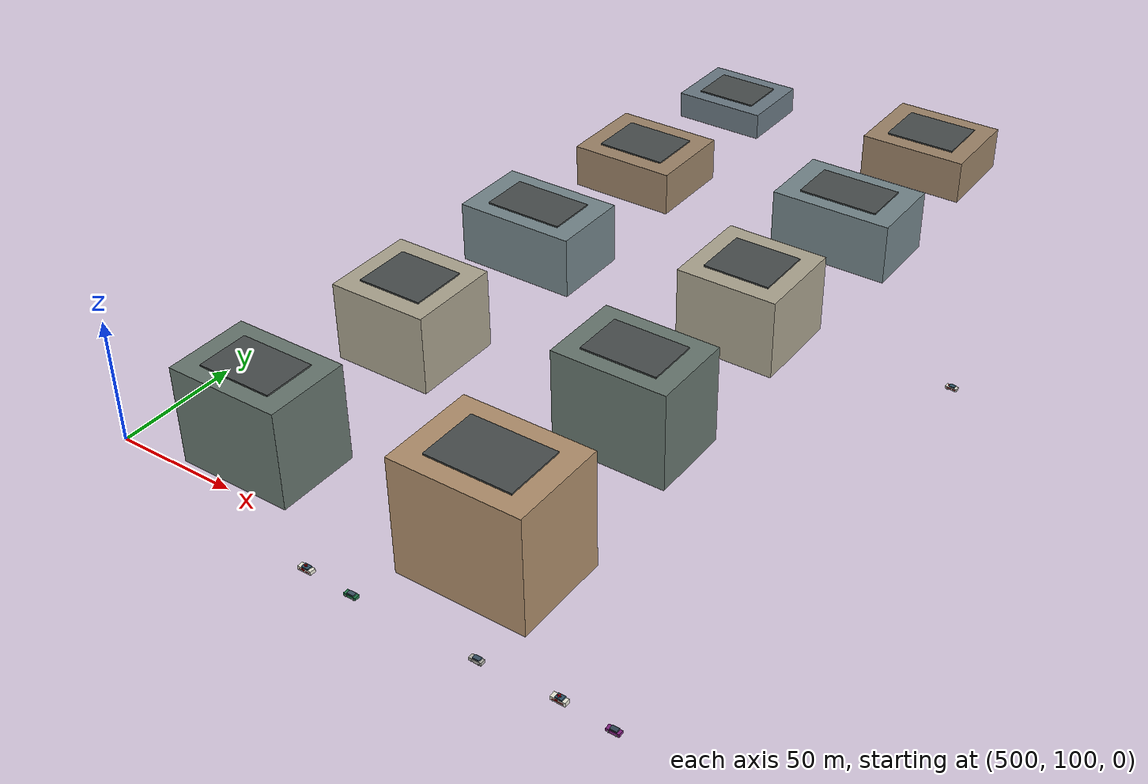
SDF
<sdf version="1.9">
 <world name="smart_city">
  <model name="chennai_block_064">
   <static>true</static>
   <pose>550 120 0 0 0 0</pose>
   <link name="building">
    <collision name="structure">
     <pose>0 0 20.0 0 0 0</pose>
     <geometry><box><size>47 34 40</size></box></geometry>
    </collision>
    <visual name="facade">
     <pose>0 0 20.0 0 0 0</pose>
     <geometry><box><size>47 34 40</size></box></geometry>
     <material><ambient>0.41 0.47 0.44 1</ambient><diffuse>0.41 0.47 0.44 1</diffuse></material>
    </visual>
    <visual name="roof">
     <pose>0 0 40.3 0 0 0</pose>
     <geometry><box><size>31.0 21.1 0.6</size></box></geometry>
     <material><ambient>0.29 0.31 0.31 1</ambient><diffuse>0.29 0.31 0.31 1</diffuse></material>
    </visual>
   </link>
  </model>
  <model name="chennai_block_065">
   <static>true</static>
   <pose>650 120 0 0 0 0</pose>
   <link name="building">
    <collision name="structure">
     <pose>0 0 23.5 0 0 0</pose>
     <geometry><box><size>52 39 47</size></box></geometry>
    </collision>
    <visual name="facade">
     <pose>0 0 23.5 0 0 0</pose>
     <geometry><box><size>52 39 47</size></box></geometry>
     <material><ambient>0.70 0.57 0.43 1</ambient><diffuse>0.70 0.57 0.43 1</diffuse></material>
    </visual>
    <visual name="roof">
     <pose>0 0 47.3 0 0 0</pose>
     <geometry><box><size>34.3 24.2 0.6</size></box></geometry>
     <material><ambient>0.29 0.31 0.31 1</ambient><diffuse>0.29 0.31 0.31 1</diffuse></material>
    </visual>
   </link>
  </model>
  <model name="chennai_block_075">
   <static>true</static>
   <pose>550 200 0 0 0 0</pose>
   <link name="building">
    <collision name="structure">
     <pose>0 0 16.5 0 0 0</pose>
     <geometry><box><size>42 39 33</size></box></geometry>
    </collision>
    <visual name="facade">
     <pose>0 0 16.5 0 0 0</pose>
     <geometry><box><size>42 39 33</size></box></geometry>
     <material><ambient>0.68 0.65 0.57 1</ambient><diffuse>0.68 0.65 0.57 1</diffuse></material>
    </visual>
    <visual name="roof">
     <pose>0 0 33.3 0 0 0</pose>
     <geometry><box><size>27.7 24.2 0.6</size></box></geometry>
     <material><ambient>0.29 0.31 0.31 1</ambient><diffuse>0.29 0.31 0.31 1</diffuse></material>
    </visual>
   </link>
  </model>
  <model name="chennai_block_076">
   <static>true</static>
   <pose>650 200 0 0 0 0</pose>
   <link name="building">
    <collision name="structure">
     <pose>0 0 20.0 0 0 0</pose>
     <geometry><box><size>47 34 40</size></box></geometry>
    </collision>
    <visual name="facade">
     <pose>0 0 20.0 0 0 0</pose>
     <geometry><box><size>47 34 40</size></box></geometry>
     <material><ambient>0.41 0.47 0.44 1</ambient><diffuse>0.41 0.47 0.44 1</diffuse></material>
    </visual>
    <visual name="roof">
     <pose>0 0 40.3 0 0 0</pose>
     <geometry><box><size>31.0 21.1 0.6</size></box></geometry>
     <material><ambient>0.29 0.31 0.31 1</ambient><diffuse>0.29 0.31 0.31 1</diffuse></material>
    </visual>
   </link>
  </model>
  <model name="chennai_block_086">
   <static>true</static>
   <pose>550 280 0 0 0 0</pose>
   <link name="building">
    <collision name="structure">
     <pose>0 0 13.0 0 0 0</pose>
     <geometry><box><size>52 34 26</size></box></geometry>
    </collision>
    <visual name="facade">
     <pose>0 0 13.0 0 0 0</pose>
     <geometry><box><size>52 34 26</size></box></geometry>
     <material><ambient>0.46 0.53 0.55 1</ambient><diffuse>0.46 0.53 0.55 1</diffuse></material>
    </visual>
    <visual name="roof">
     <pose>0 0 26.3 0 0 0</pose>
     <geometry><box><size>34.3 21.1 0.6</size></box></geometry>
     <material><ambient>0.29 0.31 0.31 1</ambient><diffuse>0.29 0.31 0.31 1</diffuse></material>
    </visual>
   </link>
  </model>
  <model name="chennai_block_087">
   <static>true</static>
   <pose>650 280 0 0 0 0</pose>
   <link name="building">
    <collision name="structure">
     <pose>0 0 16.5 0 0 0</pose>
     <geometry><box><size>42 39 33</size></box></geometry>
    </collision>
    <visual name="facade">
     <pose>0 0 16.5 0 0 0</pose>
     <geometry><box><size>42 39 33</size></box></geometry>
     <material><ambient>0.68 0.65 0.57 1</ambient><diffuse>0.68 0.65 0.57 1</diffuse></material>
    </visual>
    <visual name="roof">
     <pose>0 0 33.3 0 0 0</pose>
     <geometry><box><size>27.7 24.2 0.6</size></box></geometry>
     <material><ambient>0.29 0.31 0.31 1</ambient><diffuse>0.29 0.31 0.31 1</diffuse></material>
    </visual>
   </link>
  </model>
  <model name="chennai_block_097">
   <static>true</static>
   <pose>550 360 0 0 0 0</pose>
   <link name="building">
    <collision name="structure">
     <pose>0 0 9.5 0 0 0</pose>
     <geometry><box><size>47 39 19</size></box></geometry>
    </collision>
    <visual name="facade">
     <pose>0 0 9.5 0 0 0</pose>
     <geometry><box><size>47 39 19</size></box></geometry>
     <material><ambient>0.62 0.52 0.41 1</ambient><diffuse>0.62 0.52 0.41 1</diffuse></material>
    </visual>
    <visual name="roof">
     <pose>0 0 19.3 0 0 0</pose>
     <geometry><box><size>31.0 24.2 0.6</size></box></geometry>
     <material><ambient>0.29 0.31 0.31 1</ambient><diffuse>0.29 0.31 0.31 1</diffuse></material>
    </visual>
   </link>
  </model>
  <model name="chennai_block_098">
   <static>true</static>
   <pose>650 360 0 0 0 0</pose>
   <link name="building">
    <collision name="structure">
     <pose>0 0 13.0 0 0 0</pose>
     <geometry><box><size>52 34 26</size></box></geometry>
    </collision>
    <visual name="facade">
     <pose>0 0 13.0 0 0 0</pose>
     <geometry><box><size>52 34 26</size></box></geometry>
     <material><ambient>0.46 0.53 0.55 1</ambient><diffuse>0.46 0.53 0.55 1</diffuse></material>
    </visual>
    <visual name="roof">
     <pose>0 0 26.3 0 0 0</pose>
     <geometry><box><size>34.3 21.1 0.6</size></box></geometry>
     <material><ambient>0.29 0.31 0.31 1</ambient><diffuse>0.29 0.31 0.31 1</diffuse></material>
    </visual>
   </link>
  </model>
  <model name="chennai_block_108">
   <static>true</static>
   <pose>550 440 0 0 0 0</pose>
   <link name="building">
    <collision name="structure">
     <pose>0 0 6.0 0 0 0</pose>
     <geometry><box><size>42 34 12</size></box></geometry>
    </collision>
    <visual name="facade">
     <pose>0 0 6.0 0 0 0</pose>
     <geometry><box><size>42 34 12</size></box></geometry>
     <material><ambient>0.42 0.48 0.52 1</ambient><diffuse>0.42 0.48 0.52 1</diffuse></material>
    </visual>
    <visual name="roof">
     <pose>0 0 12.3 0 0 0</pose>
     <geometry><box><size>27.7 21.1 0.6</size></box></geometry>
     <material><ambient>0.29 0.31 0.31 1</ambient><diffuse>0.29 0.31 0.31 1</diffuse></material>
    </visual>
   </link>
  </model>
  <model name="chennai_block_109">
   <static>true</static>
   <pose>650 440 0 0 0 0</pose>
   <link name="building">
    <collision name="structure">
     <pose>0 0 9.5 0 0 0</pose>
     <geometry><box><size>47 39 19</size></box></geometry>
    </collision>
    <visual name="facade">
     <pose>0 0 9.5 0 0 0</pose>
     <geometry><box><size>47 39 19</size></box></geometry>
     <material><ambient>0.62 0.52 0.41 1</ambient><diffuse>0.62 0.52 0.41 1</diffuse></material>
    </visual>
    <visual name="roof">
     <pose>0 0 19.3 0 0 0</pose>
     <geometry><box><size>31.0 24.2 0.6</size></box></geometry>
     <material><ambient>0.29 0.31 0.31 1</ambient><diffuse>0.29 0.31 0.31 1</diffuse></material>
    </visual>
   </link>
  </model>
  <model name="parked_ambulance_05">
   <static>true</static>
   <pose>730 292 0 0 0 3.1416</pose>
   <link name="base_link">
    <pose>0 0 0.72 0 0 0</pose>
    <inertial>
     <mass>650</mass>
     <inertia><ixx>487.5</ixx><iyy>715.0</iyy><izz>910.0</izz><ixy>0</ixy><ixz>0</ixz><iyz>0</iyz></inertia>
    </inertial>
    <collision name="body_collision"><geometry><box><size>4.5 1.95 0.96</size></box></geometry></collision>
    <visual name="body">
     <geometry><box><size>4.5 1.95 0.96</size></box></geometry>
     <material><ambient>0.92 0.92 0.88 1</ambient><diffuse>0.92 0.92 0.88 1</diffuse></material>
    </visual>
    <visual name="cabin">
     <pose>-0.15 0 0.63 0 0 0</pose>
     <geometry><box><size>2.16 1.60 0.63</size></box></geometry>
     <material><ambient>0.20 0.35 0.42 1</ambient><diffuse>0.20 0.35 0.42 1</diffuse></material>
    </visual>
    <visual name="red_emergency_stripe_-1">
     <pose>0 -0.990 -0.06 0 0 0</pose>
     <geometry><box><size>3.42 0.035 0.28</size></box></geometry>
     <material><ambient>0.82 0.025 0.02 1</ambient><diffuse>0.82 0.025 0.02 1</diffuse></material>
    </visual>
    <visual name="red_emergency_stripe_1">
     <pose>0 0.990 -0.06 0 0 0</pose>
     <geometry><box><size>3.42 0.035 0.28</size></box></geometry>
     <material><ambient>0.82 0.025 0.02 1</ambient><diffuse>0.82 0.025 0.02 1</diffuse></material>
    </visual>
    <visual name="blue_lightbar">
     <pose>-0.1 0 0.8 0 0 0</pose>
     <geometry><box><size>0.8 0.3 0.16</size></box></geometry>
     <material>
      <ambient>0.02 0.16 0.95 1</ambient>
      <diffuse>0.02 0.16 0.95 1</diffuse>
      <emissive>0.02 0.08 0.65 1</emissive>
     </material>
    </visual>
    <visual name="roof_cross">
     <pose>1.25 0 0.66 0 0 0</pose>
     <geometry><box><size>0.3 0.92 0.08</size></box></geometry>
     <material><ambient>0.9 0.04 0.02 1</ambient><diffuse>0.9 0.04 0.02 1</diffuse></material>
    </visual>
    <collision name="wheel_collision_r_r">
     <pose>-1.40 -0.90 -0.38 1.5708 0 0</pose>
     <geometry><cylinder><radius>0.34</radius><length>0.20</length></cylinder></geometry>
     <surface><friction><ode><mu>0.004</mu><mu2>0.004</mu2></ode></friction></surface>
    </collision>
    <visual name="wheel_r_r">
     <pose>-1.40 -0.90 -0.38 1.5708 0 0</pose>
     <geometry><cylinder><radius>0.34</radius><length>0.20</length></cylinder></geometry>
     <material><ambient>0.055 0.055 0.06 1</ambient><diffuse>0.055 0.055 0.06 1</diffuse></material>
    </visual>
    <collision name="wheel_collision_r_l">
     <pose>-1.40 0.90 -0.38 1.5708 0 0</pose>
     <geometry><cylinder><radius>0.34</radius><length>0.20</length></cylinder></geometry>
     <surface><friction><ode><mu>0.004</mu><mu2>0.004</mu2></ode></friction></surface>
    </collision>
    <visual name="wheel_r_l">
     <pose>-1.40 0.90 -0.38 1.5708 0 0</pose>
     <geometry><cylinder><radius>0.34</radius><length>0.20</length></cylinder></geometry>
     <material><ambient>0.055 0.055 0.06 1</ambient><diffuse>0.055 0.055 0.06 1</diffuse></material>
    </visual>
    <collision name="wheel_collision_f_r">
     <pose>1.40 -0.90 -0.38 1.5708 0 0</pose>
     <geometry><cylinder><radius>0.34</radius><length>0.20</length></cylinder></geometry>
     <surface><friction><ode><mu>0.004</mu><mu2>0.004</mu2></ode></friction></surface>
    </collision>
    <visual name="wheel_f_r">
     <pose>1.40 -0.90 -0.38 1.5708 0 0</pose>
     <geometry><cylinder><radius>0.34</radius><length>0.20</length></cylinder></geometry>
     <material><ambient>0.055 0.055 0.06 1</ambient><diffuse>0.055 0.055 0.06 1</diffuse></material>
    </visual>
    <collision name="wheel_collision_f_l">
     <pose>1.40 0.90 -0.38 1.5708 0 0</pose>
     <geometry><cylinder><radius>0.34</radius><length>0.20</length></cylinder></geometry>
     <surface><friction><ode><mu>0.004</mu><mu2>0.004</mu2></ode></friction></surface>
    </collision>
    <visual name="wheel_f_l">
     <pose>1.40 0.90 -0.38 1.5708 0 0</pose>
     <geometry><cylinder><radius>0.34</radius><length>0.20</length></cylinder></geometry>
     <material><ambient>0.055 0.055 0.06 1</ambient><diffuse>0.055 0.055 0.06 1</diffuse></material>
    </visual>
   </link>
  </model>
  <model name="downtown_car_46">
   <static>true</static>
   <pose>620 84 0 0 0 3.1416</pose>
   <link name="car">
    <visual name="body">
     <pose>0 0 0.72 0 0 0</pose>
     <geometry><box><size>4.8 2.0 1.1</size></box></geometry>
     <material><ambient>0.12 0.47 0.28 1</ambient><diffuse>0.12 0.47 0.28 1</diffuse></material>
    </visual>
    <visual name="cabin">
     <pose>-0.18 0 1.38 0 0 0</pose>
     <geometry><box><size>2.55 1.72 0.72</size></box></geometry>
     <material><ambient>0.25 0.34 0.40 1</ambient><diffuse>0.25 0.34 0.40 1</diffuse></material>
    </visual>
    <visual name="wheel_fl">
     <pose>1.45 0.96 0.36 1.5708 0 0</pose>
     <geometry><cylinder><radius>0.35</radius><length>0.18</length></cylinder></geometry>
     <material><ambient>0.04 0.04 0.045 1</ambient><diffuse>0.04 0.04 0.045 1</diffuse></material>
    </visual>
    <visual name="wheel_fr">
     <pose>1.45 -0.96 0.36 1.5708 0 0</pose>
     <geometry><cylinder><radius>0.35</radius><length>0.18</length></cylinder></geometry>
     <material><ambient>0.04 0.04 0.045 1</ambient><diffuse>0.04 0.04 0.045 1</diffuse></material>
    </visual>
    <visual name="wheel_rl">
     <pose>-1.45 0.96 0.36 1.5708 0 0</pose>
     <geometry><cylinder><radius>0.35</radius><length>0.18</length></cylinder></geometry>
     <material><ambient>0.04 0.04 0.045 1</ambient><diffuse>0.04 0.04 0.045 1</diffuse></material>
    </visual>
    <visual name="wheel_rr">
     <pose>-1.45 -0.96 0.36 1.5708 0 0</pose>
     <geometry><cylinder><radius>0.35</radius><length>0.18</length></cylinder></geometry>
     <material><ambient>0.04 0.04 0.045 1</ambient><diffuse>0.04 0.04 0.045 1</diffuse></material>
    </visual>
   </link>
  </model>
  <model name="downtown_car_47">
   <static>true</static>
   <pose>670 84 0 0 0 3.1416</pose>
   <link name="car">
    <visual name="body">
     <pose>0 0 0.72 0 0 0</pose>
     <geometry><box><size>4.8 2.0 1.1</size></box></geometry>
     <material><ambient>0.72 0.72 0.68 1</ambient><diffuse>0.72 0.72 0.68 1</diffuse></material>
    </visual>
    <visual name="cabin">
     <pose>-0.18 0 1.38 0 0 0</pose>
     <geometry><box><size>2.55 1.72 0.72</size></box></geometry>
     <material><ambient>0.22 0.32 0.39 1</ambient><diffuse>0.22 0.32 0.39 1</diffuse></material>
    </visual>
    <visual name="wheel_fl">
     <pose>1.45 0.96 0.36 1.5708 0 0</pose>
     <geometry><cylinder><radius>0.35</radius><length>0.18</length></cylinder></geometry>
     <material><ambient>0.04 0.04 0.045 1</ambient><diffuse>0.04 0.04 0.045 1</diffuse></material>
    </visual>
    <visual name="wheel_fr">
     <pose>1.45 -0.96 0.36 1.5708 0 0</pose>
     <geometry><cylinder><radius>0.35</radius><length>0.18</length></cylinder></geometry>
     <material><ambient>0.04 0.04 0.045 1</ambient><diffuse>0.04 0.04 0.045 1</diffuse></material>
    </visual>
    <visual name="wheel_rl">
     <pose>-1.45 0.96 0.36 1.5708 0 0</pose>
     <geometry><cylinder><radius>0.35</radius><length>0.18</length></cylinder></geometry>
     <material><ambient>0.04 0.04 0.045 1</ambient><diffuse>0.04 0.04 0.045 1</diffuse></material>
    </visual>
    <visual name="wheel_rr">
     <pose>-1.45 -0.96 0.36 1.5708 0 0</pose>
     <geometry><cylinder><radius>0.35</radius><length>0.18</length></cylinder></geometry>
     <material><ambient>0.04 0.04 0.045 1</ambient><diffuse>0.04 0.04 0.045 1</diffuse></material>
    </visual>
   </link>
  </model>
  <model name="downtown_car_48">
   <static>true</static>
   <pose>720 84 0 0 0 3.1416</pose>
   <link name="car">
    <visual name="body">
     <pose>0 0 0.72 0 0 0</pose>
     <geometry><box><size>4.8 2.0 1.1</size></box></geometry>
     <material><ambient>0.52 0.14 0.52 1</ambient><diffuse>0.52 0.14 0.52 1</diffuse></material>
    </visual>
    <visual name="cabin">
     <pose>-0.18 0 1.38 0 0 0</pose>
     <geometry><box><size>2.55 1.72 0.72</size></box></geometry>
     <material><ambient>0.20 0.28 0.34 1</ambient><diffuse>0.20 0.28 0.34 1</diffuse></material>
    </visual>
    <visual name="wheel_fl">
     <pose>1.45 0.96 0.36 1.5708 0 0</pose>
     <geometry><cylinder><radius>0.35</radius><length>0.18</length></cylinder></geometry>
     <material><ambient>0.04 0.04 0.045 1</ambient><diffuse>0.04 0.04 0.045 1</diffuse></material>
    </visual>
    <visual name="wheel_fr">
     <pose>1.45 -0.96 0.36 1.5708 0 0</pose>
     <geometry><cylinder><radius>0.35</radius><length>0.18</length></cylinder></geometry>
     <material><ambient>0.04 0.04 0.045 1</ambient><diffuse>0.04 0.04 0.045 1</diffuse></material>
    </visual>
    <visual name="wheel_rl">
     <pose>-1.45 0.96 0.36 1.5708 0 0</pose>
     <geometry><cylinder><radius>0.35</radius><length>0.18</length></cylinder></geometry>
     <material><ambient>0.04 0.04 0.045 1</ambient><diffuse>0.04 0.04 0.045 1</diffuse></material>
    </visual>
    <visual name="wheel_rr">
     <pose>-1.45 -0.96 0.36 1.5708 0 0</pose>
     <geometry><cylinder><radius>0.35</radius><length>0.18</length></cylinder></geometry>
     <material><ambient>0.04 0.04 0.045 1</ambient><diffuse>0.04 0.04 0.045 1</diffuse></material>
    </visual>
   </link>
  </model>
  <model name="district_ambulance_15">
   <static>true</static>
   <pose>600 85 0 0 0 3.1416</pose>
   <link name="ambulance">
    <visual name="body">
     <pose>0 0 0.82 0 0 0</pose>
     <geometry><box><size>5.6 2.25 1.4</size></box></geometry>
     <material><ambient>0.94 0.94 0.88 1</ambient><diffuse>0.94 0.94 0.88 1</diffuse></material>
    </visual>
    <visual name="medical_cabin">
     <pose>-0.25 0 1.62 0 0 0</pose>
     <geometry><box><size>2.7 2.12 0.86</size></box></geometry>
     <material><ambient>0.20 0.34 0.42 1</ambient><diffuse>0.20 0.34 0.42 1</diffuse></material>
    </visual>
    <visual name="red_side_stripe">
     <pose>0 1.14 0.76 0 0 0</pose>
     <geometry><box><size>4.4 0.05 0.26</size></box></geometry>
     <material><ambient>0.86 0.02 0.02 1</ambient><diffuse>0.86 0.02 0.02 1</diffuse></material>
    </visual>
    <visual name="red_side_cross_v">
     <pose>0.35 1.18 1.18 0 0 0</pose>
     <geometry><box><size>0.36 0.08 1.0</size></box></geometry>
     <material><ambient>0.9 0.02 0.02 1</ambient><diffuse>0.9 0.02 0.02 1</diffuse></material>
    </visual>
    <visual name="red_side_cross_h">
     <pose>0.35 1.18 1.18 0 0 0</pose>
     <geometry><box><size>1.0 0.08 0.36</size></box></geometry>
     <material><ambient>0.9 0.02 0.02 1</ambient><diffuse>0.9 0.02 0.02 1</diffuse></material>
    </visual>
    <visual name="lightbar">
     <pose>0 0 2.1 0 0 0</pose>
     <geometry><box><size>1.0 0.42 0.18</size></box></geometry>
     <material>
      <ambient>0.02 0.15 0.95 1</ambient>
      <diffuse>0.02 0.15 0.95 1</diffuse>
      <emissive>0.02 0.08 0.65 1</emissive>
     </material>
    </visual>
    <visual name="roof_cross_long">
     <pose>0 0 2.22 0 0 0</pose>
     <geometry><box><size>1.5 0.34 0.08</size></box></geometry>
     <material><ambient>0.9 0.02 0.02 1</ambient><diffuse>0.9 0.02 0.02 1</diffuse></material>
    </visual>
    <visual name="roof_cross_wide">
     <pose>0 0 2.22 0 0 0</pose>
     <geometry><box><size>0.34 1.5 0.08</size></box></geometry>
     <material><ambient>0.9 0.02 0.02 1</ambient><diffuse>0.9 0.02 0.02 1</diffuse></material>
    </visual>
    <visual name="wheel_fl">
     <pose>1.72 1.08 0.36 1.5708 0 0</pose>
     <geometry><cylinder><radius>0.36</radius><length>0.18</length></cylinder></geometry>
     <material><ambient>0.04 0.04 0.045 1</ambient><diffuse>0.04 0.04 0.045 1</diffuse></material>
    </visual>
    <visual name="wheel_fr">
     <pose>1.72 -1.08 0.36 1.5708 0 0</pose>
     <geometry><cylinder><radius>0.36</radius><length>0.18</length></cylinder></geometry>
     <material><ambient>0.04 0.04 0.045 1</ambient><diffuse>0.04 0.04 0.045 1</diffuse></material>
    </visual>
    <visual name="wheel_rl">
     <pose>-1.72 1.08 0.36 1.5708 0 0</pose>
     <geometry><cylinder><radius>0.36</radius><length>0.18</length></cylinder></geometry>
     <material><ambient>0.04 0.04 0.045 1</ambient><diffuse>0.04 0.04 0.045 1</diffuse></material>
    </visual>
    <visual name="wheel_rr">
     <pose>-1.72 -1.08 0.36 1.5708 0 0</pose>
     <geometry><cylinder><radius>0.36</radius><length>0.18</length></cylinder></geometry>
     <material><ambient>0.04 0.04 0.045 1</ambient><diffuse>0.04 0.04 0.045 1</diffuse></material>
    </visual>
   </link>
  </model>
  <model name="district_ambulance_16">
   <static>true</static>
   <pose>700 85 0 0 0 3.1416</pose>
   <link name="ambulance">
    <visual name="body">
     <pose>0 0 0.82 0 0 0</pose>
     <geometry><box><size>5.6 2.25 1.4</size></box></geometry>
     <material><ambient>0.94 0.94 0.88 1</ambient><diffuse>0.94 0.94 0.88 1</diffuse></material>
    </visual>
    <visual name="medical_cabin">
     <pose>-0.25 0 1.62 0 0 0</pose>
     <geometry><box><size>2.7 2.12 0.86</size></box></geometry>
     <material><ambient>0.20 0.34 0.42 1</ambient><diffuse>0.20 0.34 0.42 1</diffuse></material>
    </visual>
    <visual name="red_side_stripe">
     <pose>0 1.14 0.76 0 0 0</pose>
     <geometry><box><size>4.4 0.05 0.26</size></box></geometry>
     <material><ambient>0.86 0.02 0.02 1</ambient><diffuse>0.86 0.02 0.02 1</diffuse></material>
    </visual>
    <visual name="red_side_cross_v">
     <pose>0.35 1.18 1.18 0 0 0</pose>
     <geometry><box><size>0.36 0.08 1.0</size></box></geometry>
     <material><ambient>0.9 0.02 0.02 1</ambient><diffuse>0.9 0.02 0.02 1</diffuse></material>
    </visual>
    <visual name="red_side_cross_h">
     <pose>0.35 1.18 1.18 0 0 0</pose>
     <geometry><box><size>1.0 0.08 0.36</size></box></geometry>
     <material><ambient>0.9 0.02 0.02 1</ambient><diffuse>0.9 0.02 0.02 1</diffuse></material>
    </visual>
    <visual name="lightbar">
     <pose>0 0 2.1 0 0 0</pose>
     <geometry><box><size>1.0 0.42 0.18</size></box></geometry>
     <material>
      <ambient>0.02 0.15 0.95 1</ambient>
      <diffuse>0.02 0.15 0.95 1</diffuse>
      <emissive>0.02 0.08 0.65 1</emissive>
     </material>
    </visual>
    <visual name="roof_cross_long">
     <pose>0 0 2.22 0 0 0</pose>
     <geometry><box><size>1.5 0.34 0.08</size></box></geometry>
     <material><ambient>0.9 0.02 0.02 1</ambient><diffuse>0.9 0.02 0.02 1</diffuse></material>
    </visual>
    <visual name="roof_cross_wide">
     <pose>0 0 2.22 0 0 0</pose>
     <geometry><box><size>0.34 1.5 0.08</size></box></geometry>
     <material><ambient>0.9 0.02 0.02 1</ambient><diffuse>0.9 0.02 0.02 1</diffuse></material>
    </visual>
    <visual name="wheel_fl">
     <pose>1.72 1.08 0.36 1.5708 0 0</pose>
     <geometry><cylinder><radius>0.36</radius><length>0.18</length></cylinder></geometry>
     <material><ambient>0.04 0.04 0.045 1</ambient><diffuse>0.04 0.04 0.045 1</diffuse></material>
    </visual>
    <visual name="wheel_fr">
     <pose>1.72 -1.08 0.36 1.5708 0 0</pose>
     <geometry><cylinder><radius>0.36</radius><length>0.18</length></cylinder></geometry>
     <material><ambient>0.04 0.04 0.045 1</ambient><diffuse>0.04 0.04 0.045 1</diffuse></material>
    </visual>
    <visual name="wheel_rl">
     <pose>-1.72 1.08 0.36 1.5708 0 0</pose>
     <geometry><cylinder><radius>0.36</radius><length>0.18</length></cylinder></geometry>
     <material><ambient>0.04 0.04 0.045 1</ambient><diffuse>0.04 0.04 0.045 1</diffuse></material>
    </visual>
    <visual name="wheel_rr">
     <pose>-1.72 -1.08 0.36 1.5708 0 0</pose>
     <geometry><cylinder><radius>0.36</radius><length>0.18</length></cylinder></geometry>
     <material><ambient>0.04 0.04 0.045 1</ambient><diffuse>0.04 0.04 0.045 1</diffuse></material>
    </visual>
   </link>
  </model>
 </world>
</sdf>
